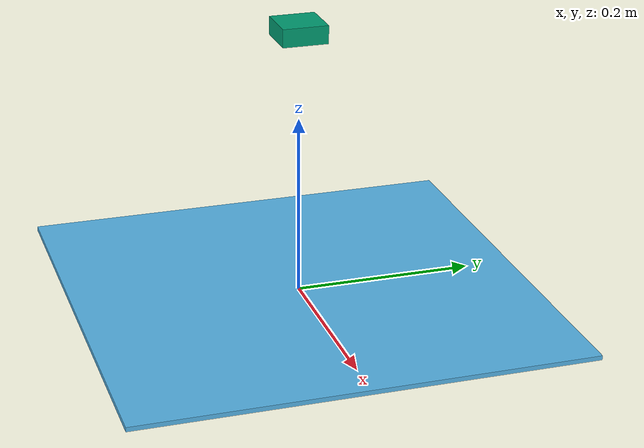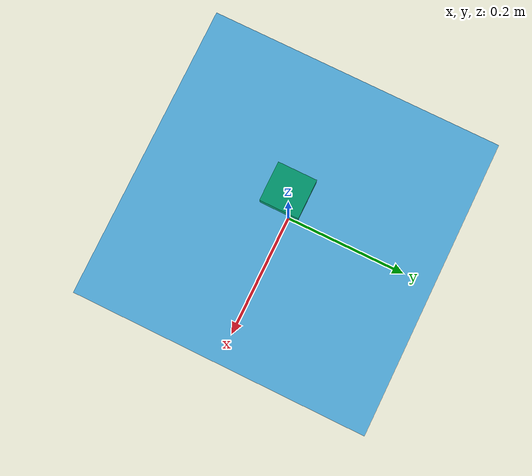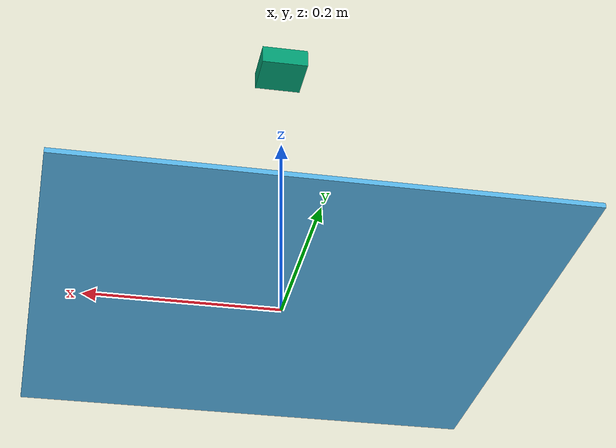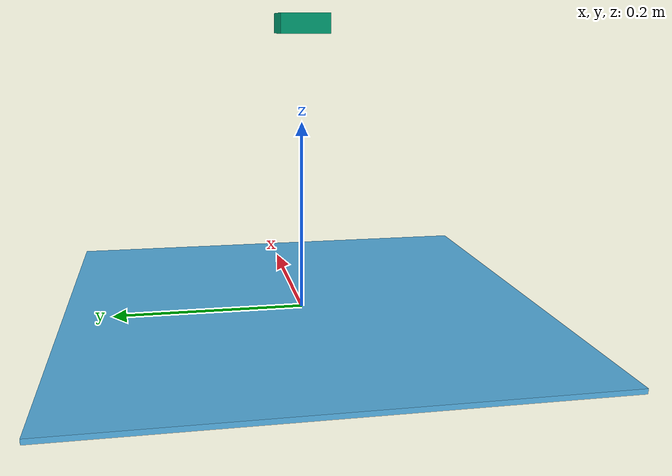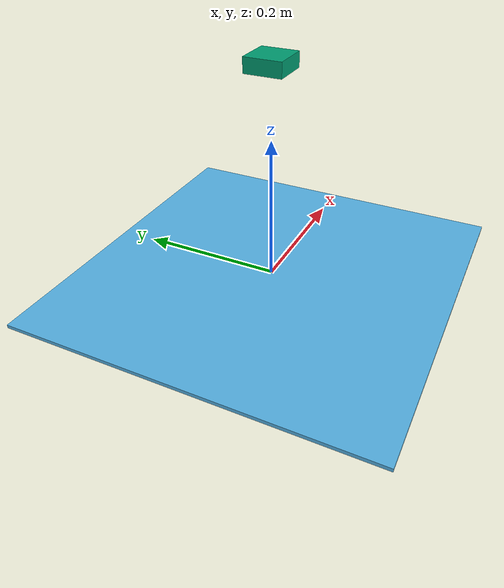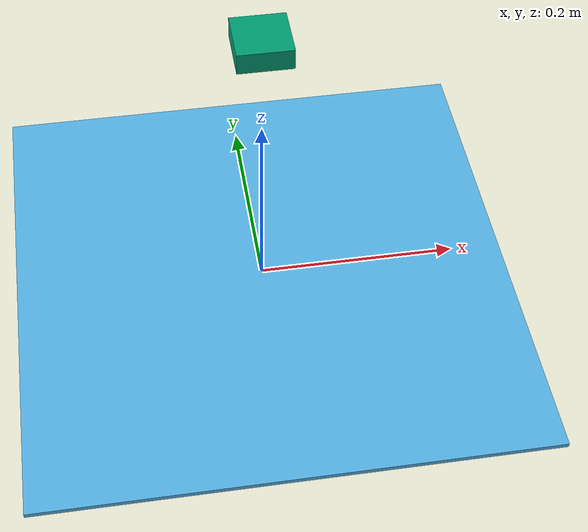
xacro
<?xml version="1.0"?>
<robot name="motor" xmlns:xacro="http://www.ros.org/wiki/xacro">

  <xacro:include filename="$(find gazebo_ros_motors)/xacro/inertia_calc.xacro"/>
  <xacro:include filename="$(find gazebo_ros_motors)/xacro/motor.xacro"/>

  <link name="base_footprint"/>

  <joint name="base_joint" type="fixed">
      <parent link="base_footprint"/>
      <child link="base_link"/>
      <origin rpy="0 0 0" xyz="0 0 0"/>
  </joint>

  <link name="base_link">
      <visual>
        <geometry>
          <box size="0.5 0.5 0.005"/>
        </geometry>
      </visual>
      <collision>
        <geometry>
          <box size="0.5 0.5 0.005"/>
        </geometry>
      </collision>
      <inertial>
        <geometry>
          <box size="0.5 0.5 0.005"/>
        </geometry>
        <mass value="500"/>
        <xacro:box_inertia m="500" x="0.5" y="0.5" z="0.05"/>
      </inertial>
  </link>

  <link name="one_link">
    <visual>
      <geometry>
        <box size="0.05 0.05 0.02"/>
      </geometry>
    </visual>
    <collision>
      <geometry>
        <box size="0.05 0.05 0.02"/>
      </geometry>
    </collision>
    <inertial>
      <geometry>
        <box size="0.05 0.05 0.02"/>
      </geometry>
      <mass value="100"/>
      <xacro:box_inertia m="100" x="0.5" y="0.5" z="0.05"/>
    </inertial>
  </link>

  <joint name="one_joint" type="continuous">
    <origin xyz="0 0 0.3" rpy="0 0 0"/>
    <parent link="base_link"/>
    <child link="one_link"/>
    <axis xyz="0 0 1"/>
    <dynamics damping="0.005" friction="0.1"/>
  </joint>

  <xacro:dc_motor motor_name="one_motor" motor_joint="one_joint" child_link="one_link">
    <xacro:property name="params_yaml" value="$(find gazebo_ros_motors)/params/dc_motor.yaml"/>
  </xacro:dc_motor>

</robot>
